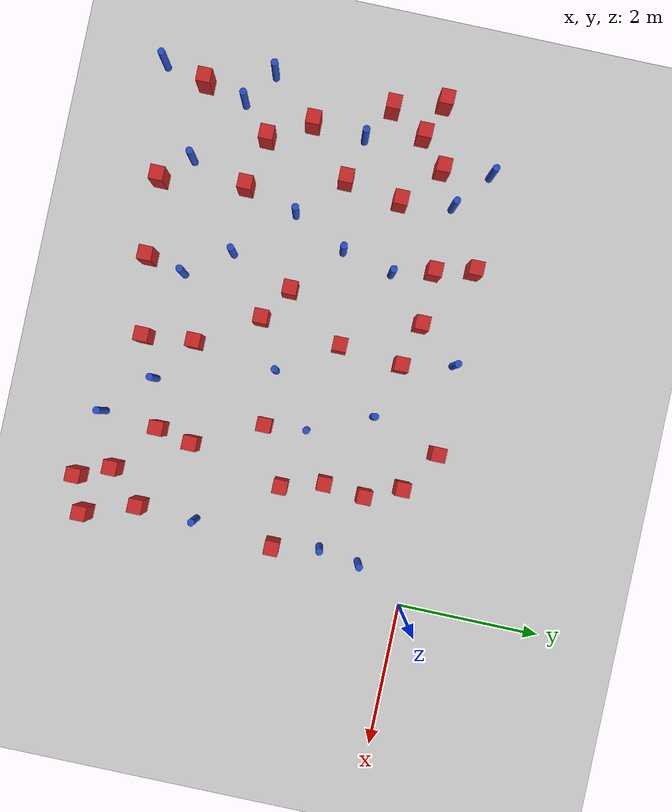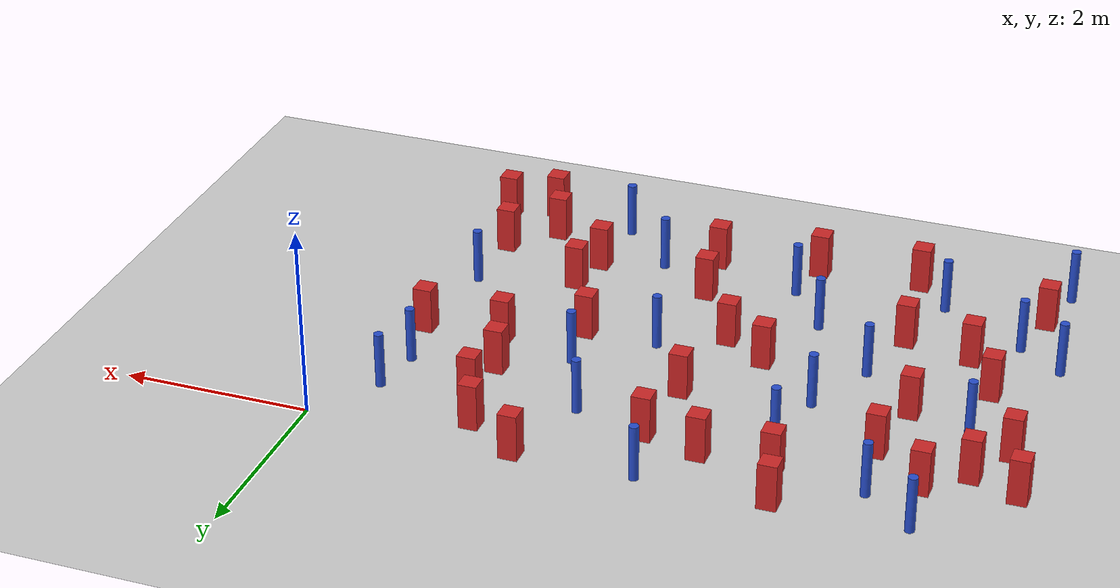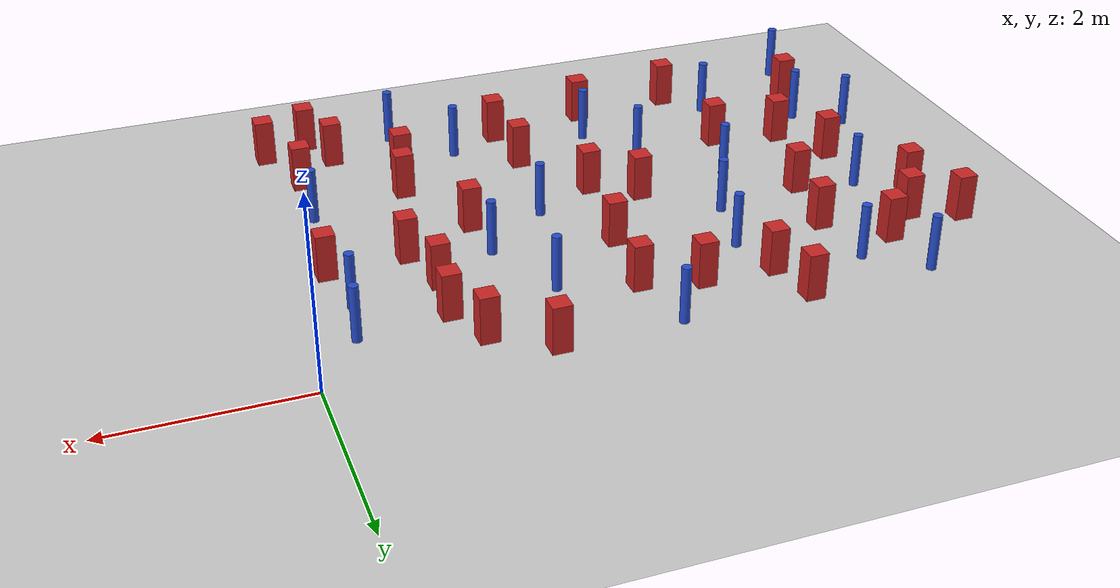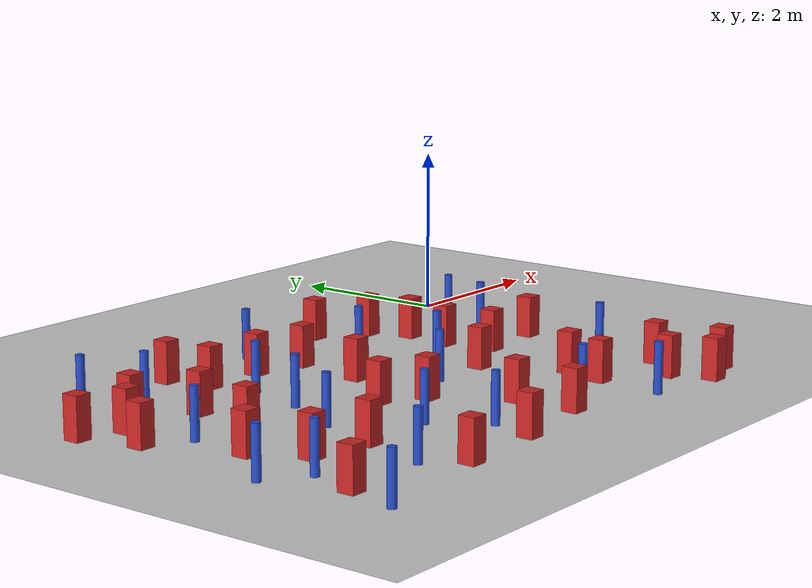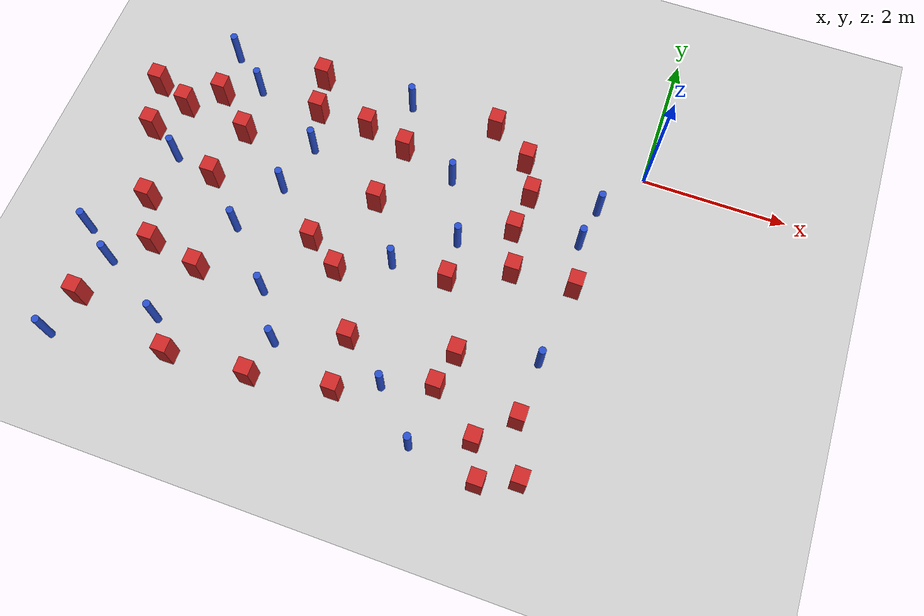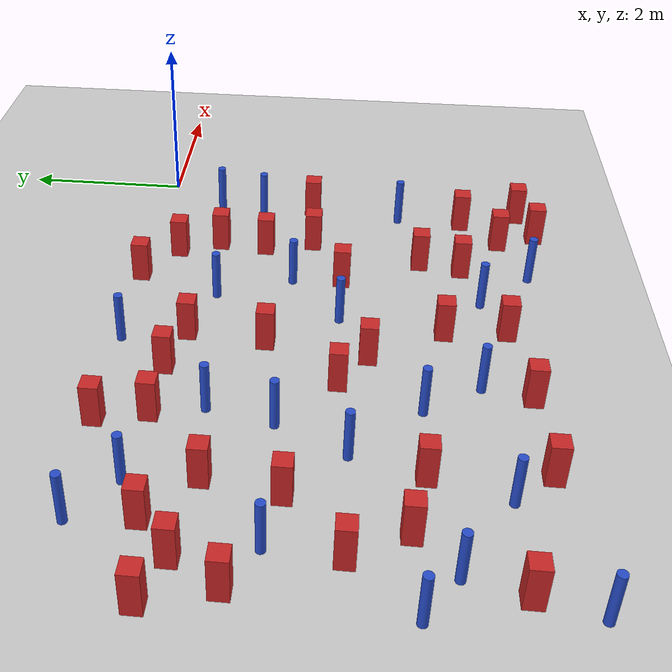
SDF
<sdf version="1.6">
 <world name="default">
  <model name="ground_plane">
   <static>1</static>
   <link name="link">
    <collision name="collision">
     <geometry><plane><normal>0 0 1</normal><size>100 100</size></plane></geometry>
     <surface><friction><ode><mu>100</mu><mu2>50</mu2></ode></friction></surface>
    </collision>
    <visual name="visual">
     <cast_shadows>0</cast_shadows>
     <geometry><plane><normal>0 0 1</normal><size>100 100</size></plane></geometry>
     <material>
      <ambient>1.0 1.0 1.0 1.0</ambient>
      <diffuse>0.8 0.8 0.8 1.0</diffuse>
      <specular>0.01 0.01 0.01 1.000000</specular>
     </material>
    </visual>
   </link>
  </model>
  <model name="pole_obstacle4">
   <static>true</static>
   <pose>-0.489798649073 -0.701766864221 -9.47619616065e-06 5.49618799737e-07 2.3631041405e-07 -1.55090534807e-07</pose>
   <link name="link">
    <pose>0 0 0.3 0 -0 0</pose>
    <inertial>
     <mass>1</mass>
     <inertia><ixx>0.145833</ixx><ixy>0</ixy><ixz>0</ixz><iyy>0.145833</iyy><iyz>0</iyz><izz>0.125</izz></inertia>
    </inertial>
    <collision name="collision">
     <geometry><cylinder><radius>0.05</radius><length>.6</length></cylinder></geometry>
    </collision>
    <visual name="visual">
     <geometry><cylinder><radius>0.05</radius><length>.6</length></cylinder></geometry>
     <material>
      <script><name>Gazebo/Blue</name><uri>file://media/materials/scripts/gazebo.material</uri></script>
     </material>
    </visual>
   </link>
  </model>
  <model name="pole_obstacle6">
   <static>true</static>
   <pose>-6.73994371988 -4.76425897762 -9.47619616065e-06 5.49618799737e-07 2.36310414037e-07 -1.55090534814e-07</pose>
   <link name="link">
    <pose>0 0 0.3 0 -0 0</pose>
    <inertial>
     <mass>1</mass>
     <inertia><ixx>0.145833</ixx><ixy>0</ixy><ixz>0</ixz><iyy>0.145833</iyy><iyz>0</iyz><izz>0.125</izz></inertia>
    </inertial>
    <collision name="collision">
     <geometry><cylinder><radius>0.05</radius><length>.6</length></cylinder></geometry>
    </collision>
    <visual name="visual">
     <geometry><cylinder><radius>0.05</radius><length>.6</length></cylinder></geometry>
     <material>
      <script><name>Gazebo/Blue</name><uri>file://media/materials/scripts/gazebo.material</uri></script>
     </material>
    </visual>
   </link>
  </model>
  <model name="square_post_obstacle2">
   <static>true</static>
   <pose>-4.66760439507 -0.521512777751 -6.11067671241e-07 -5.50515727128e-06 -8.79689657224e-07 2.37013304536e-05</pose>
   <link name="link">
    <pose>0 0 0.25 0 -0 0</pose>
    <inertial>
     <mass>100</mass>
     <inertia>
      <ixx>0.166667</ixx>
      <ixy>0</ixy>
      <ixz>0</ixz>
      <iyy>0.166667</iyy>
      <iyz>0</iyz>
      <izz>0.166667</izz>
     </inertia>
    </inertial>
    <collision name="collision"><geometry><box><size>.2 .2 .5</size></box></geometry></collision>
    <visual name="visual">
     <geometry><box><size>.2 .2 .5</size></box></geometry>
     <material>
      <script><name>Gazebo/Red</name><uri>file://media/materials/scripts/gazebo.material</uri></script>
     </material>
    </visual>
   </link>
  </model>
  <model name="pole_obstacle7">
   <static>true</static>
   <pose>-5.06785787233 -2.56014334162 -9.47619616065e-06 5.49618799738e-07 2.36310414051e-07 -1.55090534805e-07</pose>
   <link name="link">
    <pose>0 0 0.3 0 -0 0</pose>
    <inertial>
     <mass>1</mass>
     <inertia><ixx>0.145833</ixx><ixy>0</ixy><ixz>0</ixz><iyy>0.145833</iyy><iyz>0</iyz><izz>0.125</izz></inertia>
    </inertial>
    <collision name="collision">
     <geometry><cylinder><radius>0.05</radius><length>.6</length></cylinder></geometry>
    </collision>
    <visual name="visual">
     <geometry><cylinder><radius>0.05</radius><length>.6</length></cylinder></geometry>
     <material>
      <script><name>Gazebo/Blue</name><uri>file://media/materials/scripts/gazebo.material</uri></script>
     </material>
    </visual>
   </link>
  </model>
  <model name="square_post_obstacle5">
   <static>true</static>
   <pose>-1.48127883033 -1.39184149811 -6.11067671241e-07 -5.50515727128e-06 -8.79689657224e-07 2.37013304536e-05</pose>
   <link name="link">
    <pose>0 0 0.25 0 -0 0</pose>
    <inertial>
     <mass>100</mass>
     <inertia>
      <ixx>0.166667</ixx>
      <ixy>0</ixy>
      <ixz>0</ixz>
      <iyy>0.166667</iyy>
      <iyz>0</iyz>
      <izz>0.166667</izz>
     </inertia>
    </inertial>
    <collision name="collision"><geometry><box><size>.2 .2 .5</size></box></geometry></collision>
    <visual name="visual">
     <geometry><box><size>.2 .2 .5</size></box></geometry>
     <material>
      <script><name>Gazebo/Red</name><uri>file://media/materials/scripts/gazebo.material</uri></script>
     </material>
    </visual>
   </link>
  </model>
  <model name="pole_obstacle10">
   <static>true</static>
   <pose>-6.29512703898 -1.83872455876 -9.47619616065e-06 5.49618799738e-07 2.36310414071e-07 -1.55090534796e-07</pose>
   <link name="link">
    <pose>0 0 0.3 0 -0 0</pose>
    <inertial>
     <mass>1</mass>
     <inertia><ixx>0.145833</ixx><ixy>0</ixy><ixz>0</ixz><iyy>0.145833</iyy><iyz>0</iyz><izz>0.125</izz></inertia>
    </inertial>
    <collision name="collision">
     <geometry><cylinder><radius>0.05</radius><length>.6</length></cylinder></geometry>
    </collision>
    <visual name="visual">
     <geometry><cylinder><radius>0.05</radius><length>.6</length></cylinder></geometry>
     <material>
      <script><name>Gazebo/Blue</name><uri>file://media/materials/scripts/gazebo.material</uri></script>
     </material>
    </visual>
   </link>
  </model>
  <model name="square_post_obstacle9">
   <static>true</static>
   <pose>-0.477985754404 -1.91767797434 -6.11067671241e-07 -5.50515727128e-06 -8.79689657224e-07 2.37013304536e-05</pose>
   <link name="link">
    <pose>0 0 0.25 0 -0 0</pose>
    <inertial>
     <mass>100</mass>
     <inertia>
      <ixx>0.166667</ixx>
      <ixy>0</ixy>
      <ixz>0</ixz>
      <iyy>0.166667</iyy>
      <iyz>0</iyz>
      <izz>0.166667</izz>
     </inertia>
    </inertial>
    <collision name="collision"><geometry><box><size>.2 .2 .5</size></box></geometry></collision>
    <visual name="visual">
     <geometry><box><size>.2 .2 .5</size></box></geometry>
     <material>
      <script><name>Gazebo/Red</name><uri>file://media/materials/scripts/gazebo.material</uri></script>
     </material>
    </visual>
   </link>
  </model>
  <model name="pole_obstacle23">
   <static>true</static>
   <pose>-2.14956527406 -1.78440719836 -9.47619616065e-06 5.49618799737e-07 2.36310414072e-07 -1.55090534793e-07</pose>
   <link name="link">
    <pose>0 0 0.3 0 -0 0</pose>
    <inertial>
     <mass>1</mass>
     <inertia><ixx>0.145833</ixx><ixy>0</ixy><ixz>0</ixz><iyy>0.145833</iyy><iyz>0</iyz><izz>0.125</izz></inertia>
    </inertial>
    <collision name="collision">
     <geometry><cylinder><radius>0.05</radius><length>.6</length></cylinder></geometry>
    </collision>
    <visual name="visual">
     <geometry><cylinder><radius>0.05</radius><length>.6</length></cylinder></geometry>
     <material>
      <script><name>Gazebo/Blue</name><uri>file://media/materials/scripts/gazebo.material</uri></script>
     </material>
    </visual>
   </link>
  </model>
  <model name="square_post_obstacle18">
   <static>true</static>
   <pose>-2.09965793069 -2.36724747682 -6.11067671241e-07 -5.50515727128e-06 -8.79689657224e-07 2.37013304536e-05</pose>
   <link name="link">
    <pose>0 0 0.25 0 -0 0</pose>
    <inertial>
     <mass>100</mass>
     <inertia>
      <ixx>0.166667</ixx>
      <ixy>0</ixy>
      <ixz>0</ixz>
      <iyy>0.166667</iyy>
      <iyz>0</iyz>
      <izz>0.166667</izz>
     </inertia>
    </inertial>
    <collision name="collision"><geometry><box><size>.2 .2 .5</size></box></geometry></collision>
    <visual name="visual">
     <geometry><box><size>.2 .2 .5</size></box></geometry>
     <material>
      <script><name>Gazebo/Red</name><uri>file://media/materials/scripts/gazebo.material</uri></script>
     </material>
    </visual>
   </link>
  </model>
  <model name="pole_obstacle24">
   <static>true</static>
   <pose>-0.608565551165 -3.04563329331 -9.47619616065e-06 5.49618799737e-07 2.36310414066e-07 -1.55090534797e-07</pose>
   <link name="link">
    <pose>0 0 0.3 0 -0 0</pose>
    <inertial>
     <mass>1</mass>
     <inertia><ixx>0.145833</ixx><ixy>0</ixy><ixz>0</ixz><iyy>0.145833</iyy><iyz>0</iyz><izz>0.125</izz></inertia>
    </inertial>
    <collision name="collision">
     <geometry><cylinder><radius>0.05</radius><length>.6</length></cylinder></geometry>
    </collision>
    <visual name="visual">
     <geometry><cylinder><radius>0.05</radius><length>.6</length></cylinder></geometry>
     <material>
      <script><name>Gazebo/Blue</name><uri>file://media/materials/scripts/gazebo.material</uri></script>
     </material>
    </visual>
   </link>
  </model>
  <model name="pole_obstacle25">
   <static>true</static>
   <pose>-2.416297895 -4.00244597895 -9.47619616065e-06 5.49618799737e-07 2.36310414057e-07 -1.55090534803e-07</pose>
   <link name="link">
    <pose>0 0 0.3 0 -0 0</pose>
    <inertial>
     <mass>1</mass>
     <inertia><ixx>0.145833</ixx><ixy>0</ixy><ixz>0</ixz><iyy>0.145833</iyy><iyz>0</iyz><izz>0.125</izz></inertia>
    </inertial>
    <collision name="collision">
     <geometry><cylinder><radius>0.05</radius><length>.6</length></cylinder></geometry>
    </collision>
    <visual name="visual">
     <geometry><cylinder><radius>0.05</radius><length>.6</length></cylinder></geometry>
     <material>
      <script><name>Gazebo/Blue</name><uri>file://media/materials/scripts/gazebo.material</uri></script>
     </material>
    </visual>
   </link>
  </model>
  <model name="pole_obstacle26">
   <static>true</static>
   <pose>-6.91704868237 -3.24062742938 -9.47619616065e-06 5.49618799738e-07 2.36310414051e-07 -1.55090534805e-07</pose>
   <link name="link">
    <pose>0 0 0.3 0 -0 0</pose>
    <inertial>
     <mass>1</mass>
     <inertia><ixx>0.145833</ixx><ixy>0</ixy><ixz>0</ixz><iyy>0.145833</iyy><iyz>0</iyz><izz>0.125</izz></inertia>
    </inertial>
    <collision name="collision">
     <geometry><cylinder><radius>0.05</radius><length>.6</length></cylinder></geometry>
    </collision>
    <visual name="visual">
     <geometry><cylinder><radius>0.05</radius><length>.6</length></cylinder></geometry>
     <material>
      <script><name>Gazebo/Blue</name><uri>file://media/materials/scripts/gazebo.material</uri></script>
     </material>
    </visual>
   </link>
  </model>
  <model name="square_post_obstacle32">
   <static>true</static>
   <pose>-1.64459302322 -3.30639543006 -6.11067671241e-07 -5.50515727128e-06 -8.79689657224e-07 2.37013304536e-05</pose>
   <link name="link">
    <pose>0 0 0.25 0 -0 0</pose>
    <inertial>
     <mass>100</mass>
     <inertia>
      <ixx>0.166667</ixx>
      <ixy>0</ixy>
      <ixz>0</ixz>
      <iyy>0.166667</iyy>
      <iyz>0</iyz>
      <izz>0.166667</izz>
     </inertia>
    </inertial>
    <collision name="collision"><geometry><box><size>.2 .2 .5</size></box></geometry></collision>
    <visual name="visual">
     <geometry><box><size>.2 .2 .5</size></box></geometry>
     <material>
      <script><name>Gazebo/Red</name><uri>file://media/materials/scripts/gazebo.material</uri></script>
     </material>
    </visual>
   </link>
  </model>
  <model name="square_post_obstacle35">
   <static>true</static>
   <pose>-3.39252426709 -1.5815310638 -6.11067671241e-07 -5.50515727128e-06 -8.79689657224e-07 2.37013304536e-05</pose>
   <link name="link">
    <pose>0 0 0.25 0 -0 0</pose>
    <inertial>
     <mass>100</mass>
     <inertia>
      <ixx>0.166667</ixx>
      <ixy>0</ixy>
      <ixz>0</ixz>
      <iyy>0.166667</iyy>
      <iyz>0</iyz>
      <izz>0.166667</izz>
     </inertia>
    </inertial>
    <collision name="collision"><geometry><box><size>.2 .2 .5</size></box></geometry></collision>
    <visual name="visual">
     <geometry><box><size>.2 .2 .5</size></box></geometry>
     <material>
      <script><name>Gazebo/Red</name><uri>file://media/materials/scripts/gazebo.material</uri></script>
     </material>
    </visual>
   </link>
  </model>
  <model name="square_post_obstacle38">
   <static>true</static>
   <pose>-5.15552277923 -4.51014365335 -6.11067671241e-07 -5.50515727128e-06 -8.79689657224e-07 2.37013304536e-05</pose>
   <link name="link">
    <pose>0 0 0.25 0 -0 0</pose>
    <inertial>
     <mass>100</mass>
     <inertia>
      <ixx>0.166667</ixx>
      <ixy>0</ixy>
      <ixz>0</ixz>
      <iyy>0.166667</iyy>
      <iyz>0</iyz>
      <izz>0.166667</izz>
     </inertia>
    </inertial>
    <collision name="collision"><geometry><box><size>.2 .2 .5</size></box></geometry></collision>
    <visual name="visual">
     <geometry><box><size>.2 .2 .5</size></box></geometry>
     <material>
      <script><name>Gazebo/Red</name><uri>file://media/materials/scripts/gazebo.material</uri></script>
     </material>
    </visual>
   </link>
  </model>
  <model name="pole_obstacle53">
   <static>true</static>
   <pose>-5.51330119905 -4.11602458814 -9.47619616065e-06 5.49618799737e-07 2.36310414037e-07 -1.55090534814e-07</pose>
   <link name="link">
    <pose>0 0 0.3 0 -0 0</pose>
    <inertial>
     <mass>1</mass>
     <inertia><ixx>0.145833</ixx><ixy>0</ixy><ixz>0</ixz><iyy>0.145833</iyy><iyz>0</iyz><izz>0.125</izz></inertia>
    </inertial>
    <collision name="collision">
     <geometry><cylinder><radius>0.05</radius><length>.6</length></cylinder></geometry>
    </collision>
    <visual name="visual">
     <geometry><cylinder><radius>0.05</radius><length>.6</length></cylinder></geometry>
     <material>
      <script><name>Gazebo/Blue</name><uri>file://media/materials/scripts/gazebo.material</uri></script>
     </material>
    </visual>
   </link>
  </model>
  <model name="square_post_obstacle46">
   <static>true</static>
   <pose>-5.28720387621 -3.30877802687 -6.11067671241e-07 -5.50515727128e-06 -8.79689657224e-07 2.37013304536e-05</pose>
   <link name="link">
    <pose>0 0 0.25 0 -0 0</pose>
    <inertial>
     <mass>100</mass>
     <inertia>
      <ixx>0.166667</ixx>
      <ixy>0</ixy>
      <ixz>0</ixz>
      <iyy>0.166667</iyy>
      <iyz>0</iyz>
      <izz>0.166667</izz>
     </inertia>
    </inertial>
    <collision name="collision"><geometry><box><size>.2 .2 .5</size></box></geometry></collision>
    <visual name="visual">
     <geometry><box><size>.2 .2 .5</size></box></geometry>
     <material>
      <script><name>Gazebo/Red</name><uri>file://media/materials/scripts/gazebo.material</uri></script>
     </material>
    </visual>
   </link>
  </model>
  <model name="square_post_obstacle48">
   <static>true</static>
   <pose>-5.66213426914 -1.9748497821 -6.11067671241e-07 -5.50515727128e-06 -8.79689657224e-07 2.37013304536e-05</pose>
   <link name="link">
    <pose>0 0 0.25 0 -0 0</pose>
    <inertial>
     <mass>100</mass>
     <inertia>
      <ixx>0.166667</ixx>
      <ixy>0</ixy>
      <ixz>0</ixz>
      <iyy>0.166667</iyy>
      <iyz>0</iyz>
      <izz>0.166667</izz>
     </inertia>
    </inertial>
    <collision name="collision"><geometry><box><size>.2 .2 .5</size></box></geometry></collision>
    <visual name="visual">
     <geometry><box><size>.2 .2 .5</size></box></geometry>
     <material>
      <script><name>Gazebo/Red</name><uri>file://media/materials/scripts/gazebo.material</uri></script>
     </material>
    </visual>
   </link>
  </model>
  <model name="square_post_obstacle52">
   <static>true</static>
   <pose>-4.05430227682 -4.43809469634 -6.11067671241e-07 -5.50515727128e-06 -8.79689657224e-07 2.37013304536e-05</pose>
   <link name="link">
    <pose>0 0 0.25 0 -0 0</pose>
    <inertial>
     <mass>100</mass>
     <inertia>
      <ixx>0.166667</ixx>
      <ixy>0</ixy>
      <ixz>0</ixz>
      <iyy>0.166667</iyy>
      <iyz>0</iyz>
      <izz>0.166667</izz>
     </inertia>
    </inertial>
    <collision name="collision"><geometry><box><size>.2 .2 .5</size></box></geometry></collision>
    <visual name="visual">
     <geometry><box><size>.2 .2 .5</size></box></geometry>
     <material>
      <script><name>Gazebo/Red</name><uri>file://media/materials/scripts/gazebo.material</uri></script>
     </material>
    </visual>
   </link>
  </model>
  <model name="pole_obstacle81">
   <static>true</static>
   <pose>-1.82416118786 -4.60821948742 -9.47619616065e-06 5.49618799737e-07 2.36310414061e-07 -1.550905348e-07</pose>
   <link name="link">
    <pose>0 0 0.3 0 -0 0</pose>
    <inertial>
     <mass>1</mass>
     <inertia><ixx>0.145833</ixx><ixy>0</ixy><ixz>0</ixz><iyy>0.145833</iyy><iyz>0</iyz><izz>0.125</izz></inertia>
    </inertial>
    <collision name="collision">
     <geometry><cylinder><radius>0.05</radius><length>.6</length></cylinder></geometry>
    </collision>
    <visual name="visual">
     <geometry><cylinder><radius>0.05</radius><length>.6</length></cylinder></geometry>
     <material>
      <script><name>Gazebo/Blue</name><uri>file://media/materials/scripts/gazebo.material</uri></script>
     </material>
    </visual>
   </link>
  </model>
  <model name="square_post_obstacle87">
   <static>true</static>
   <pose>-3.54252245469 -2.71761704175 -6.11067671241e-07 -5.50515727128e-06 -8.79689657224e-07 2.37013304536e-05</pose>
   <link name="link">
    <pose>0 0 0.25 0 -0 0</pose>
    <inertial>
     <mass>100</mass>
     <inertia>
      <ixx>0.166667</ixx>
      <ixy>0</ixy>
      <ixz>0</ixz>
      <iyy>0.166667</iyy>
      <iyz>0</iyz>
      <izz>0.166667</izz>
     </inertia>
    </inertial>
    <collision name="collision"><geometry><box><size>.2 .2 .5</size></box></geometry></collision>
    <visual name="visual">
     <geometry><box><size>.2 .2 .5</size></box></geometry>
     <material>
      <script><name>Gazebo/Red</name><uri>file://media/materials/scripts/gazebo.material</uri></script>
     </material>
    </visual>
   </link>
  </model>
  <model name="square_post_obstacle91">
   <static>true</static>
   <pose>-0.889258979599 -4.76958318386 -6.11067671241e-07 -5.50515727128e-06 -8.79689657224e-07 2.37013304536e-05</pose>
   <link name="link">
    <pose>0 0 0.25 0 -0 0</pose>
    <inertial>
     <mass>100</mass>
     <inertia>
      <ixx>0.166667</ixx>
      <ixy>0</ixy>
      <ixz>0</ixz>
      <iyy>0.166667</iyy>
      <iyz>0</iyz>
      <izz>0.166667</izz>
     </inertia>
    </inertial>
    <collision name="collision"><geometry><box><size>.2 .2 .5</size></box></geometry></collision>
    <visual name="visual">
     <geometry><box><size>.2 .2 .5</size></box></geometry>
     <material>
      <script><name>Gazebo/Red</name><uri>file://media/materials/scripts/gazebo.material</uri></script>
     </material>
    </visual>
   </link>
  </model>
  <model name="pole_obstacle100">
   <static>true</static>
   <pose>-4.35152701368 -3.30086687288 -9.47619616065e-06 5.49618799738e-07 2.36310414051e-07 -1.55090534805e-07</pose>
   <link name="link">
    <pose>0 0 0.3 0 -0 0</pose>
    <inertial>
     <mass>1</mass>
     <inertia><ixx>0.145833</ixx><ixy>0</ixy><ixz>0</ixz><iyy>0.145833</iyy><iyz>0</iyz><izz>0.125</izz></inertia>
    </inertial>
    <collision name="collision">
     <geometry><cylinder><radius>0.05</radius><length>.6</length></cylinder></geometry>
    </collision>
    <visual name="visual">
     <geometry><cylinder><radius>0.05</radius><length>.6</length></cylinder></geometry>
     <material>
      <script><name>Gazebo/Blue</name><uri>file://media/materials/scripts/gazebo.material</uri></script>
     </material>
    </visual>
   </link>
  </model>
  <model name="square_post_obstacle96">
   <static>true</static>
   <pose>-1.42145987992 -0.81912012384 -6.11067671241e-07 -5.50515727128e-06 -8.79689657224e-07 2.37013304536e-05</pose>
   <link name="link">
    <pose>0 0 0.25 0 -0 0</pose>
    <inertial>
     <mass>100</mass>
     <inertia>
      <ixx>0.166667</ixx>
      <ixy>0</ixy>
      <ixz>0</ixz>
      <iyy>0.166667</iyy>
      <iyz>0</iyz>
      <izz>0.166667</izz>
     </inertia>
    </inertial>
    <collision name="collision"><geometry><box><size>.2 .2 .5</size></box></geometry></collision>
    <visual name="visual">
     <geometry><box><size>.2 .2 .5</size></box></geometry>
     <material>
      <script><name>Gazebo/Red</name><uri>file://media/materials/scripts/gazebo.material</uri></script>
     </material>
    </visual>
   </link>
  </model>
  <model name="square_post_obstacle116">
   <static>true</static>
   <pose>-1.63381451836 -0.324277363671 -6.11067671241e-07 -5.50515727128e-06 -8.79689657224e-07 2.37013304536e-05</pose>
   <link name="link">
    <pose>0 0 0.25 0 -0 0</pose>
    <inertial>
     <mass>100</mass>
     <inertia>
      <ixx>0.166667</ixx>
      <ixy>0</ixy>
      <ixz>0</ixz>
      <iyy>0.166667</iyy>
      <iyz>0</iyz>
      <izz>0.166667</izz>
     </inertia>
    </inertial>
    <collision name="collision"><geometry><box><size>.2 .2 .5</size></box></geometry></collision>
    <visual name="visual">
     <geometry><box><size>.2 .2 .5</size></box></geometry>
     <material>
      <script><name>Gazebo/Red</name><uri>file://media/materials/scripts/gazebo.material</uri></script>
     </material>
    </visual>
   </link>
  </model>
  <model name="pole_obstacle119">
   <static>true</static>
   <pose>-3.93016598782 -3.91586343936 -9.47619616065e-06 5.49618799737e-07 2.36310414051e-07 -1.55090534807e-07</pose>
   <link name="link">
    <pose>0 0 0.3 0 -0 0</pose>
    <inertial>
     <mass>1</mass>
     <inertia><ixx>0.145833</ixx><ixy>0</ixy><ixz>0</ixz><iyy>0.145833</iyy><iyz>0</iyz><izz>0.125</izz></inertia>
    </inertial>
    <collision name="collision">
     <geometry><cylinder><radius>0.05</radius><length>.6</length></cylinder></geometry>
    </collision>
    <visual name="visual">
     <geometry><cylinder><radius>0.05</radius><length>.6</length></cylinder></geometry>
     <material>
      <script><name>Gazebo/Blue</name><uri>file://media/materials/scripts/gazebo.material</uri></script>
     </material>
    </visual>
   </link>
  </model>
  <model name="pole_obstacle123">
   <static>true</static>
   <pose>-6.44157681546 -3.57219350665 -9.47619616065e-06 5.49618799738e-07 2.36310414051e-07 -1.55090534805e-07</pose>
   <link name="link">
    <pose>0 0 0.3 0 -0 0</pose>
    <inertial>
     <mass>1</mass>
     <inertia><ixx>0.145833</ixx><ixy>0</ixy><ixz>0</ixz><iyy>0.145833</iyy><iyz>0</iyz><izz>0.125</izz></inertia>
    </inertial>
    <collision name="collision">
     <geometry><cylinder><radius>0.05</radius><length>.6</length></cylinder></geometry>
    </collision>
    <visual name="visual">
     <geometry><cylinder><radius>0.05</radius><length>.6</length></cylinder></geometry>
     <material>
      <script><name>Gazebo/Blue</name><uri>file://media/materials/scripts/gazebo.material</uri></script>
     </material>
    </visual>
   </link>
  </model>
  <model name="pole_obstacle127">
   <static>true</static>
   <pose>-2.8710982973 -2.37603759729 -9.47619616065e-06 5.49618799737e-07 2.36310414051e-07 -1.55090534807e-07</pose>
   <link name="link">
    <pose>0 0 0.3 0 -0 0</pose>
    <inertial>
     <mass>1</mass>
     <inertia><ixx>0.145833</ixx><ixy>0</ixy><ixz>0</ixz><iyy>0.145833</iyy><iyz>0</iyz><izz>0.125</izz></inertia>
    </inertial>
    <collision name="collision">
     <geometry><cylinder><radius>0.05</radius><length>.6</length></cylinder></geometry>
    </collision>
    <visual name="visual">
     <geometry><cylinder><radius>0.05</radius><length>.6</length></cylinder></geometry>
     <material>
      <script><name>Gazebo/Blue</name><uri>file://media/materials/scripts/gazebo.material</uri></script>
     </material>
    </visual>
   </link>
  </model>
  <model name="pole_obstacle129">
   <static>true</static>
   <pose>-0.585289271104 -1.270323799 -9.47619616065e-06 5.49618799738e-07 2.36310414061e-07 -1.55090534801e-07</pose>
   <link name="link">
    <pose>0 0 0.3 0 -0 0</pose>
    <inertial>
     <mass>1</mass>
     <inertia><ixx>0.145833</ixx><ixy>0</ixy><ixz>0</ixz><iyy>0.145833</iyy><iyz>0</iyz><izz>0.125</izz></inertia>
    </inertial>
    <collision name="collision">
     <geometry><cylinder><radius>0.05</radius><length>.6</length></cylinder></geometry>
    </collision>
    <visual name="visual">
     <geometry><cylinder><radius>0.05</radius><length>.6</length></cylinder></geometry>
     <material>
      <script><name>Gazebo/Blue</name><uri>file://media/materials/scripts/gazebo.material</uri></script>
     </material>
    </visual>
   </link>
  </model>
  <model name="pole_obstacle141">
   <static>true</static>
   <pose>-4.69674502268 -1.80624729426 -9.47619616065e-06 5.49618799738e-07 2.36310414071e-07 -1.55090534796e-07</pose>
   <link name="link">
    <pose>0 0 0.3 0 -0 0</pose>
    <inertial>
     <mass>1</mass>
     <inertia><ixx>0.145833</ixx><ixy>0</ixy><ixz>0</ixz><iyy>0.145833</iyy><iyz>0</iyz><izz>0.125</izz></inertia>
    </inertial>
    <collision name="collision">
     <geometry><cylinder><radius>0.05</radius><length>.6</length></cylinder></geometry>
    </collision>
    <visual name="visual">
     <geometry><cylinder><radius>0.05</radius><length>.6</length></cylinder></geometry>
     <material>
      <script><name>Gazebo/Blue</name><uri>file://media/materials/scripts/gazebo.material</uri></script>
     </material>
    </visual>
   </link>
  </model>
  <model name="pole_obstacle145">
   <static>true</static>
   <pose>-5.61038437027 -0.441057686524 -9.47619616065e-06 5.49618799737e-07 2.36310414057e-07 -1.55090534802e-07</pose>
   <link name="link">
    <pose>0 0 0.3 0 -0 0</pose>
    <inertial>
     <mass>1</mass>
     <inertia><ixx>0.145833</ixx><ixy>0</ixy><ixz>0</ixz><iyy>0.145833</iyy><iyz>0</iyz><izz>0.125</izz></inertia>
    </inertial>
    <collision name="collision">
     <geometry><cylinder><radius>0.05</radius><length>.6</length></cylinder></geometry>
    </collision>
    <visual name="visual">
     <geometry><cylinder><radius>0.05</radius><length>.6</length></cylinder></geometry>
     <material>
      <script><name>Gazebo/Blue</name><uri>file://media/materials/scripts/gazebo.material</uri></script>
     </material>
    </visual>
   </link>
  </model>
  <model name="square_post_obstacle140">
   <static>true</static>
   <pose>-0.648866519883 -3.85067272719 -6.11067671241e-07 -5.50515727128e-06 -8.79689657224e-07 2.37013304536e-05</pose>
   <link name="link">
    <pose>0 0 0.25 0 -0 0</pose>
    <inertial>
     <mass>100</mass>
     <inertia>
      <ixx>0.166667</ixx>
      <ixy>0</ixy>
      <ixz>0</ixz>
      <iyy>0.166667</iyy>
      <iyz>0</iyz>
      <izz>0.166667</izz>
     </inertia>
    </inertial>
    <collision name="collision"><geometry><box><size>.2 .2 .5</size></box></geometry></collision>
    <visual name="visual">
     <geometry><box><size>.2 .2 .5</size></box></geometry>
     <material>
      <script><name>Gazebo/Red</name><uri>file://media/materials/scripts/gazebo.material</uri></script>
     </material>
    </visual>
   </link>
  </model>
  <model name="square_post_obstacle142">
   <static>true</static>
   <pose>-3.30104407523 -0.695845291864 -6.11067671241e-07 -5.50515727128e-06 -8.79689657224e-07 2.37013304536e-05</pose>
   <link name="link">
    <pose>0 0 0.25 0 -0 0</pose>
    <inertial>
     <mass>100</mass>
     <inertia>
      <ixx>0.166667</ixx>
      <ixy>0</ixy>
      <ixz>0</ixz>
      <iyy>0.166667</iyy>
      <iyz>0</iyz>
      <izz>0.166667</izz>
     </inertia>
    </inertial>
    <collision name="collision"><geometry><box><size>.2 .2 .5</size></box></geometry></collision>
    <visual name="visual">
     <geometry><box><size>.2 .2 .5</size></box></geometry>
     <material>
      <script><name>Gazebo/Red</name><uri>file://media/materials/scripts/gazebo.material</uri></script>
     </material>
    </visual>
   </link>
  </model>
  <model name="pole_obstacle162">
   <static>true</static>
   <pose>-3.45536763187 0.0361129789183 -9.47619616065e-06 5.49618799738e-07 2.36310414033e-07 -1.55090534819e-07</pose>
   <link name="link">
    <pose>0 0 0.3 0 -0 0</pose>
    <inertial>
     <mass>1</mass>
     <inertia><ixx>0.145833</ixx><ixy>0</ixy><ixz>0</ixz><iyy>0.145833</iyy><iyz>0</iyz><izz>0.125</izz></inertia>
    </inertial>
    <collision name="collision">
     <geometry><cylinder><radius>0.05</radius><length>.6</length></cylinder></geometry>
    </collision>
    <visual name="visual">
     <geometry><cylinder><radius>0.05</radius><length>.6</length></cylinder></geometry>
     <material>
      <script><name>Gazebo/Blue</name><uri>file://media/materials/scripts/gazebo.material</uri></script>
     </material>
    </visual>
   </link>
  </model>
  <model name="square_post_obstacle159">
   <static>true</static>
   <pose>-4.00824110654 -2.41038192375 -6.11067671241e-07 -5.50515727128e-06 -8.79689657224e-07 2.37013304536e-05</pose>
   <link name="link">
    <pose>0 0 0.25 0 -0 0</pose>
    <inertial>
     <mass>100</mass>
     <inertia>
      <ixx>0.166667</ixx>
      <ixy>0</ixy>
      <ixz>0</ixz>
      <iyy>0.166667</iyy>
      <iyz>0</iyz>
      <izz>0.166667</izz>
     </inertia>
    </inertial>
    <collision name="collision"><geometry><box><size>.2 .2 .5</size></box></geometry></collision>
    <visual name="visual">
     <geometry><box><size>.2 .2 .5</size></box></geometry>
     <material>
      <script><name>Gazebo/Red</name><uri>file://media/materials/scripts/gazebo.material</uri></script>
     </material>
    </visual>
   </link>
  </model>
  <model name="square_post_obstacle160">
   <static>true</static>
   <pose>-6.48829825593 -1.04729297522 -6.11067671241e-07 -5.50515727128e-06 -8.79689657224e-07 2.37013304536e-05</pose>
   <link name="link">
    <pose>0 0 0.25 0 -0 0</pose>
    <inertial>
     <mass>100</mass>
     <inertia>
      <ixx>0.166667</ixx>
      <ixy>0</ixy>
      <ixz>0</ixz>
      <iyy>0.166667</iyy>
      <iyz>0</iyz>
      <izz>0.166667</izz>
     </inertia>
    </inertial>
    <collision name="collision"><geometry><box><size>.2 .2 .5</size></box></geometry></collision>
    <visual name="visual">
     <geometry><box><size>.2 .2 .5</size></box></geometry>
     <material>
      <script><name>Gazebo/Red</name><uri>file://media/materials/scripts/gazebo.material</uri></script>
     </material>
    </visual>
   </link>
  </model>
  <model name="square_post_obstacle167">
   <static>true</static>
   <pose>-1.31842424794 -1.9762423427 -6.11067671241e-07 -5.50515727128e-06 -8.79689657224e-07 2.37013304536e-05</pose>
   <link name="link">
    <pose>0 0 0.25 0 -0 0</pose>
    <inertial>
     <mass>100</mass>
     <inertia>
      <ixx>0.166667</ixx>
      <ixy>0</ixy>
      <ixz>0</ixz>
      <iyy>0.166667</iyy>
      <iyz>0</iyz>
      <izz>0.166667</izz>
     </inertia>
    </inertial>
    <collision name="collision"><geometry><box><size>.2 .2 .5</size></box></geometry></collision>
    <visual name="visual">
     <geometry><box><size>.2 .2 .5</size></box></geometry>
     <material>
      <script><name>Gazebo/Red</name><uri>file://media/materials/scripts/gazebo.material</uri></script>
     </material>
    </visual>
   </link>
  </model>
  <model name="pole_obstacle169">
   <static>true</static>
   <pose>-2.52507178832 -0.912190186752 -9.47619616065e-06 5.49618799738e-07 2.36310414075e-07 -1.55090534793e-07</pose>
   <link name="link">
    <pose>0 0 0.3 0 -0 0</pose>
    <inertial>
     <mass>1</mass>
     <inertia><ixx>0.145833</ixx><ixy>0</ixy><ixz>0</ixz><iyy>0.145833</iyy><iyz>0</iyz><izz>0.125</izz></inertia>
    </inertial>
    <collision name="collision">
     <geometry><cylinder><radius>0.05</radius><length>.6</length></cylinder></geometry>
    </collision>
    <visual name="visual">
     <geometry><cylinder><radius>0.05</radius><length>.6</length></cylinder></geometry>
     <material>
      <script><name>Gazebo/Blue</name><uri>file://media/materials/scripts/gazebo.material</uri></script>
     </material>
    </visual>
   </link>
  </model>
  <model name="square_post_obstacle169">
   <static>true</static>
   <pose>-3.91420939956 -0.538773001373 -6.11067671241e-07 -5.50515727128e-06 -8.79689657224e-07 2.37013304536e-05</pose>
   <link name="link">
    <pose>0 0 0.25 0 -0 0</pose>
    <inertial>
     <mass>100</mass>
     <inertia>
      <ixx>0.166667</ixx>
      <ixy>0</ixy>
      <ixz>0</ixz>
      <iyy>0.166667</iyy>
      <iyz>0</iyz>
      <izz>0.166667</izz>
     </inertia>
    </inertial>
    <collision name="collision"><geometry><box><size>.2 .2 .5</size></box></geometry></collision>
    <visual name="visual">
     <geometry><box><size>.2 .2 .5</size></box></geometry>
     <material>
      <script><name>Gazebo/Red</name><uri>file://media/materials/scripts/gazebo.material</uri></script>
     </material>
    </visual>
   </link>
  </model>
  <model name="square_post_obstacle174">
   <static>true</static>
   <pose>-1.75351296977 -3.79931392412 -6.11067671241e-07 -5.50515727128e-06 -8.79689657224e-07 2.37013304536e-05</pose>
   <link name="link">
    <pose>0 0 0.25 0 -0 0</pose>
    <inertial>
     <mass>100</mass>
     <inertia>
      <ixx>0.166667</ixx>
      <ixy>0</ixy>
      <ixz>0</ixz>
      <iyy>0.166667</iyy>
      <iyz>0</iyz>
      <izz>0.166667</izz>
     </inertia>
    </inertial>
    <collision name="collision"><geometry><box><size>.2 .2 .5</size></box></geometry></collision>
    <visual name="visual">
     <geometry><box><size>.2 .2 .5</size></box></geometry>
     <material>
      <script><name>Gazebo/Red</name><uri>file://media/materials/scripts/gazebo.material</uri></script>
     </material>
    </visual>
   </link>
  </model>
  <model name="pole_obstacle179">
   <static>true</static>
   <pose>-4.52688246104 -1.08209602057 -9.47619616065e-06 5.49618799738e-07 2.36310414071e-07 -1.55090534796e-07</pose>
   <link name="link">
    <pose>0 0 0.3 0 -0 0</pose>
    <inertial>
     <mass>1</mass>
     <inertia><ixx>0.145833</ixx><ixy>0</ixy><ixz>0</ixz><iyy>0.145833</iyy><iyz>0</iyz><izz>0.125</izz></inertia>
    </inertial>
    <collision name="collision">
     <geometry><cylinder><radius>0.05</radius><length>.6</length></cylinder></geometry>
    </collision>
    <visual name="visual">
     <geometry><cylinder><radius>0.05</radius><length>.6</length></cylinder></geometry>
     <material>
      <script><name>Gazebo/Blue</name><uri>file://media/materials/scripts/gazebo.material</uri></script>
     </material>
    </visual>
   </link>
  </model>
  <model name="square_post_obstacle175">
   <static>true</static>
   <pose>-2.19970499533 0.0498789923769 -6.11067671241e-07 -5.50515727128e-06 -8.79689657224e-07 2.37013304536e-05</pose>
   <link name="link">
    <pose>0 0 0.25 0 -0 0</pose>
    <inertial>
     <mass>100</mass>
     <inertia>
      <ixx>0.166667</ixx>
      <ixy>0</ixy>
      <ixz>0</ixz>
      <iyy>0.166667</iyy>
      <iyz>0</iyz>
      <izz>0.166667</izz>
     </inertia>
    </inertial>
    <collision name="collision"><geometry><box><size>.2 .2 .5</size></box></geometry></collision>
    <visual name="visual">
     <geometry><box><size>.2 .2 .5</size></box></geometry>
     <material>
      <script><name>Gazebo/Red</name><uri>file://media/materials/scripts/gazebo.material</uri></script>
     </material>
    </visual>
   </link>
  </model>
  <model name="square_post_obstacle179">
   <static>true</static>
   <pose>-6.08082964559 -0.700131677768 -6.11067671241e-07 -5.50515727128e-06 -8.79689657224e-07 2.37013304536e-05</pose>
   <link name="link">
    <pose>0 0 0.25 0 -0 0</pose>
    <inertial>
     <mass>100</mass>
     <inertia>
      <ixx>0.166667</ixx>
      <ixy>0</ixy>
      <ixz>0</ixz>
      <iyy>0.166667</iyy>
      <iyz>0</iyz>
      <izz>0.166667</izz>
     </inertia>
    </inertial>
    <collision name="collision"><geometry><box><size>.2 .2 .5</size></box></geometry></collision>
    <visual name="visual">
     <geometry><box><size>.2 .2 .5</size></box></geometry>
     <material>
      <script><name>Gazebo/Red</name><uri>file://media/materials/scripts/gazebo.material</uri></script>
     </material>
    </visual>
   </link>
  </model>
  <model name="square_post_obstacle181">
   <static>true</static>
   <pose>-5.52480777059 -1.17831551238 -6.11067671241e-07 -5.50515727128e-06 -8.79689657224e-07 2.37013304536e-05</pose>
   <link name="link">
    <pose>0 0 0.25 0 -0 0</pose>
    <inertial>
     <mass>100</mass>
     <inertia>
      <ixx>0.166667</ixx>
      <ixy>0</ixy>
      <ixz>0</ixz>
      <iyy>0.166667</iyy>
      <iyz>0</iyz>
      <izz>0.166667</izz>
     </inertia>
    </inertial>
    <collision name="collision"><geometry><box><size>.2 .2 .5</size></box></geometry></collision>
    <visual name="visual">
     <geometry><box><size>.2 .2 .5</size></box></geometry>
     <material>
      <script><name>Gazebo/Red</name><uri>file://media/materials/scripts/gazebo.material</uri></script>
     </material>
    </visual>
   </link>
  </model>
  <model name="square_post_obstacle182">
   <static>true</static>
   <pose>-4.7966033704 0.0250209549906 -6.11067671241e-07 -5.50515727128e-06 -8.79689657224e-07 2.37013304536e-05</pose>
   <link name="link">
    <pose>0 0 0.25 0 -0 0</pose>
    <inertial>
     <mass>100</mass>
     <inertia>
      <ixx>0.166667</ixx>
      <ixy>0</ixy>
      <ixz>0</ixz>
      <iyy>0.166667</iyy>
      <iyz>0</iyz>
      <izz>0.166667</izz>
     </inertia>
    </inertial>
    <collision name="collision"><geometry><box><size>.2 .2 .5</size></box></geometry></collision>
    <visual name="visual">
     <geometry><box><size>.2 .2 .5</size></box></geometry>
     <material>
      <script><name>Gazebo/Red</name><uri>file://media/materials/scripts/gazebo.material</uri></script>
     </material>
    </visual>
   </link>
  </model>
  <model name="pole_obstacle183">
   <static>true</static>
   <pose>-6.14835250469 -0.013969159742 -9.47619616065e-06 5.49618799737e-07 2.36310414065e-07 -1.55090534799e-07</pose>
   <link name="link">
    <pose>0 0 0.3 0 -0 0</pose>
    <inertial>
     <mass>1</mass>
     <inertia><ixx>0.145833</ixx><ixy>0</ixy><ixz>0</ixz><iyy>0.145833</iyy><iyz>0</iyz><izz>0.125</izz></inertia>
    </inertial>
    <collision name="collision">
     <geometry><cylinder><radius>0.05</radius><length>.6</length></cylinder></geometry>
    </collision>
    <visual name="visual">
     <geometry><cylinder><radius>0.05</radius><length>.6</length></cylinder></geometry>
     <material>
      <script><name>Gazebo/Blue</name><uri>file://media/materials/scripts/gazebo.material</uri></script>
     </material>
    </visual>
   </link>
  </model>
  <model name="square_post_obstacle184">
   <static>true</static>
   <pose>-2.96332284259 -4.25801168314 -6.11067671241e-07 -5.50515727128e-06 -8.79689657224e-07 2.37013304536e-05</pose>
   <link name="link">
    <pose>0 0 0.25 0 -0 0</pose>
    <inertial>
     <mass>100</mass>
     <inertia>
      <ixx>0.166667</ixx>
      <ixy>0</ixy>
      <ixz>0</ixz>
      <iyy>0.166667</iyy>
      <iyz>0</iyz>
      <izz>0.166667</izz>
     </inertia>
    </inertial>
    <collision name="collision"><geometry><box><size>.2 .2 .5</size></box></geometry></collision>
    <visual name="visual">
     <geometry><box><size>.2 .2 .5</size></box></geometry>
     <material>
      <script><name>Gazebo/Red</name><uri>file://media/materials/scripts/gazebo.material</uri></script>
     </material>
    </visual>
   </link>
  </model>
  <model name="square_post_obstacle185">
   <static>true</static>
   <pose>-0.397697577403 -4.58100989139 -6.11067671241e-07 -5.50515727128e-06 -8.79689657224e-07 2.37013304536e-05</pose>
   <link name="link">
    <pose>0 0 0.25 0 -0 0</pose>
    <inertial>
     <mass>100</mass>
     <inertia>
      <ixx>0.166667</ixx>
      <ixy>0</ixy>
      <ixz>0</ixz>
      <iyy>0.166667</iyy>
      <iyz>0</iyz>
      <izz>0.166667</izz>
     </inertia>
    </inertial>
    <collision name="collision"><geometry><box><size>.2 .2 .5</size></box></geometry></collision>
    <visual name="visual">
     <geometry><box><size>.2 .2 .5</size></box></geometry>
     <material>
      <script><name>Gazebo/Red</name><uri>file://media/materials/scripts/gazebo.material</uri></script>
     </material>
    </visual>
   </link>
  </model>
  <model name="square_post_obstacle187">
   <static>true</static>
   <pose>-6.01006045177 -3.1634137052 -6.11067671241e-07 -5.50515727128e-06 -8.79689657224e-07 2.37013304536e-05</pose>
   <link name="link">
    <pose>0 0 0.25 0 -0 0</pose>
    <inertial>
     <mass>100</mass>
     <inertia>
      <ixx>0.166667</ixx>
      <ixy>0</ixy>
      <ixz>0</ixz>
      <iyy>0.166667</iyy>
      <iyz>0</iyz>
      <izz>0.166667</izz>
     </inertia>
    </inertial>
    <collision name="collision"><geometry><box><size>.2 .2 .5</size></box></geometry></collision>
    <visual name="visual">
     <geometry><box><size>.2 .2 .5</size></box></geometry>
     <material>
      <script><name>Gazebo/Red</name><uri>file://media/materials/scripts/gazebo.material</uri></script>
     </material>
    </visual>
   </link>
  </model>
  <model name="square_post_obstacle204">
   <static>true</static>
   <pose>-6.77915681403 -1.54702731176 -6.11067671241e-07 -5.50515727128e-06 -8.79689657224e-07 2.37013304536e-05</pose>
   <link name="link">
    <pose>0 0 0.25 0 -0 0</pose>
    <inertial>
     <mass>100</mass>
     <inertia>
      <ixx>0.166667</ixx>
      <ixy>0</ixy>
      <ixz>0</ixz>
      <iyy>0.166667</iyy>
      <iyz>0</iyz>
      <izz>0.166667</izz>
     </inertia>
    </inertial>
    <collision name="collision"><geometry><box><size>.2 .2 .5</size></box></geometry></collision>
    <visual name="visual">
     <geometry><box><size>.2 .2 .5</size></box></geometry>
     <material>
      <script><name>Gazebo/Red</name><uri>file://media/materials/scripts/gazebo.material</uri></script>
     </material>
    </visual>
   </link>
  </model>
  <model name="square_post_obstacle209">
   <static>true</static>
   <pose>-3.03253390681 -3.55301166119 -6.11067671241e-07 -5.50515727128e-06 -8.79689657224e-07 2.37013304536e-05</pose>
   <link name="link">
    <pose>0 0 0.25 0 -0 0</pose>
    <inertial>
     <mass>100</mass>
     <inertia>
      <ixx>0.166667</ixx>
      <ixy>0</ixy>
      <ixz>0</ixz>
      <iyy>0.166667</iyy>
      <iyz>0</iyz>
      <izz>0.166667</izz>
     </inertia>
    </inertial>
    <collision name="collision"><geometry><box><size>.2 .2 .5</size></box></geometry></collision>
    <visual name="visual">
     <geometry><box><size>.2 .2 .5</size></box></geometry>
     <material>
      <script><name>Gazebo/Red</name><uri>file://media/materials/scripts/gazebo.material</uri></script>
     </material>
    </visual>
   </link>
  </model>
  <model name="square_post_obstacle227">
   <static>true</static>
   <pose>-6.34492758649 -2.58060221598 -6.11067671241e-07 -5.50515727128e-06 -8.79689657224e-07 2.37013304536e-05</pose>
   <link name="link">
    <pose>0 0 0.25 0 -0 0</pose>
    <inertial>
     <mass>100</mass>
     <inertia>
      <ixx>0.166667</ixx>
      <ixy>0</ixy>
      <ixz>0</ixz>
      <iyy>0.166667</iyy>
      <iyz>0</iyz>
      <izz>0.166667</izz>
     </inertia>
    </inertial>
    <collision name="collision"><geometry><box><size>.2 .2 .5</size></box></geometry></collision>
    <visual name="visual">
     <geometry><box><size>.2 .2 .5</size></box></geometry>
     <material>
      <script><name>Gazebo/Red</name><uri>file://media/materials/scripts/gazebo.material</uri></script>
     </material>
    </visual>
   </link>
  </model>
  <model name="square_post_obstacle233">
   <static>true</static>
   <pose>-6.5931100498 -4.15826002312 -6.11067671241e-07 -5.50515727128e-06 -8.79689657224e-07 2.37013304536e-05</pose>
   <link name="link">
    <pose>0 0 0.25 0 -0 0</pose>
    <inertial>
     <mass>100</mass>
     <inertia>
      <ixx>0.166667</ixx>
      <ixy>0</ixy>
      <ixz>0</ixz>
      <iyy>0.166667</iyy>
      <iyz>0</iyz>
      <izz>0.166667</izz>
     </inertia>
    </inertial>
    <collision name="collision"><geometry><box><size>.2 .2 .5</size></box></geometry></collision>
    <visual name="visual">
     <geometry><box><size>.2 .2 .5</size></box></geometry>
     <material>
      <script><name>Gazebo/Red</name><uri>file://media/materials/scripts/gazebo.material</uri></script>
     </material>
    </visual>
   </link>
  </model>
  <model name="square_post_obstacle237">
   <static>true</static>
   <pose>-6.9933800498 -0.852137023122 -6.11067671241e-07 -5.50515727128e-06 -8.79689657224e-07 2.37013304536e-05</pose>
   <link name="link">
    <pose>0 0 0.25 0 -0 0</pose>
    <inertial>
     <mass>100</mass>
     <inertia>
      <ixx>0.166667</ixx>
      <ixy>0</ixy>
      <ixz>0</ixz>
      <iyy>0.166667</iyy>
      <iyz>0</iyz>
      <izz>0.166667</izz>
     </inertia>
    </inertial>
    <collision name="collision"><geometry><box><size>.2 .2 .5</size></box></geometry></collision>
    <visual name="visual">
     <geometry><box><size>.2 .2 .5</size></box></geometry>
     <material>
      <script><name>Gazebo/Red</name><uri>file://media/materials/scripts/gazebo.material</uri></script>
     </material>
    </visual>
   </link>
  </model>
  <model name="square_post_obstacle240">
   <static>true</static>
   <pose>-1.0906100498 -4.29774002312 -6.11067671241e-07 -5.50515727128e-06 -8.79689657224e-07 2.37013304536e-05</pose>
   <link name="link">
    <pose>0 0 0.25 0 -0 0</pose>
    <inertial>
     <mass>100</mass>
     <inertia>
      <ixx>0.166667</ixx>
      <ixy>0</ixy>
      <ixz>0</ixz>
      <iyy>0.166667</iyy>
      <iyz>0</iyz>
      <izz>0.166667</izz>
     </inertia>
    </inertial>
    <collision name="collision"><geometry><box><size>.2 .2 .5</size></box></geometry></collision>
    <visual name="visual">
     <geometry><box><size>.2 .2 .5</size></box></geometry>
     <material>
      <script><name>Gazebo/Red</name><uri>file://media/materials/scripts/gazebo.material</uri></script>
     </material>
    </visual>
   </link>
  </model>
 </world>
</sdf>
